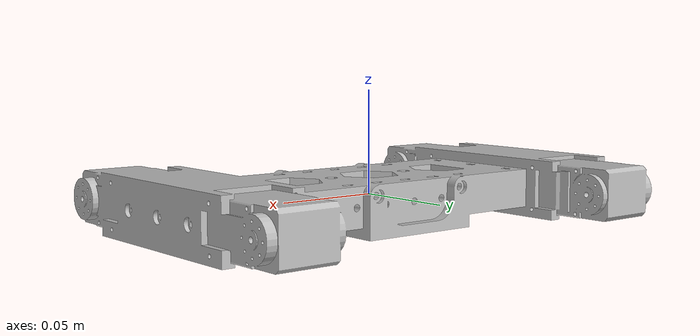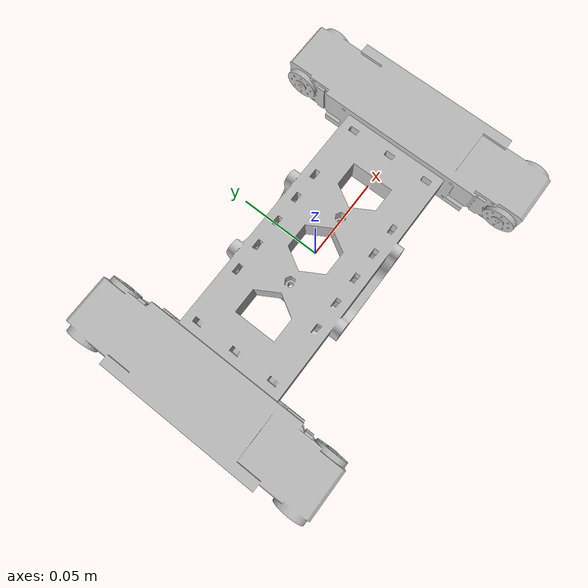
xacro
<?xml version="1.0"?>
<robot xmlns:xacro="http://www.ros.org/wiki/xacro" >
    <link name="base_link"/>

    <link name="base_footprint">
        <inertial>
            <origin xyz="-8.30066571033683E-11 -1.44840750504471E-09 -0.000342613754102716" rpy="0 0 0" />
            <mass value="0.5" />
            <inertia  ixx="0.0011072933516694948" ixy="0" ixz="0" iyy="0.0022392243210121506" iyz="0" izz="0.003276402523929809" />
        </inertial>
        <visual>
            <origin
                xyz="0 0 0"
                rpy="0 0 0" />
            <geometry>
                <mesh
                filename="package://clifford_gazebo/meshes/base_footprint.STL" />
            </geometry>
            <material
                name="">
                <color
                rgba="0.752941176470588 0.752941176470588 0.752941176470588 1" />
            </material>
        </visual>
        <collision>
            <origin
                xyz="0 0 0"
                rpy="0 0 0" />
            <geometry>
                <mesh
                filename="package://clifford_gazebo/meshes/base_footprint.STL" />
            </geometry>
        </collision>
    </link>

    <joint name="base_joint" type="fixed">
        <origin xyz="0.0 0.0 0.0" rpy="0.0 0.0 0.0"/>
        <parent link="base_link"/>
        <child link="base_footprint"/>
        <axis xyz="0.0 0.0 0.0"/>
    </joint>
</robot>
